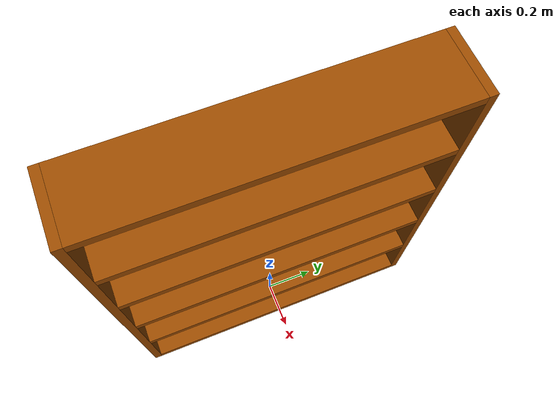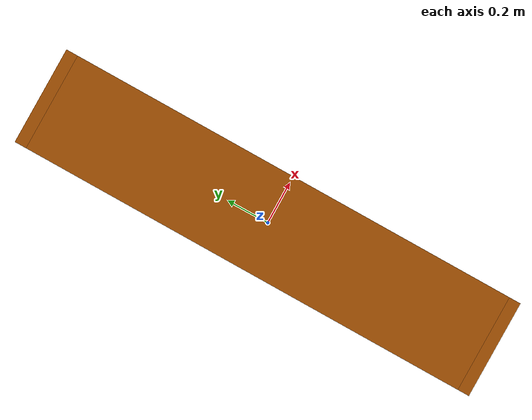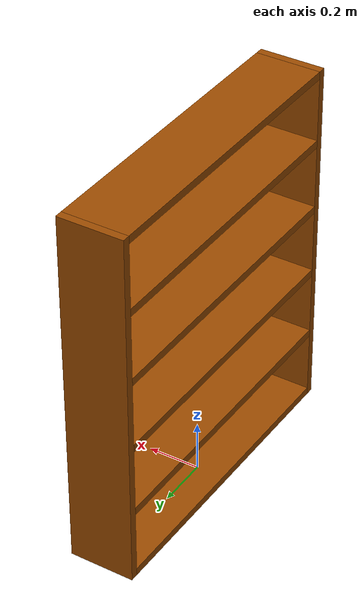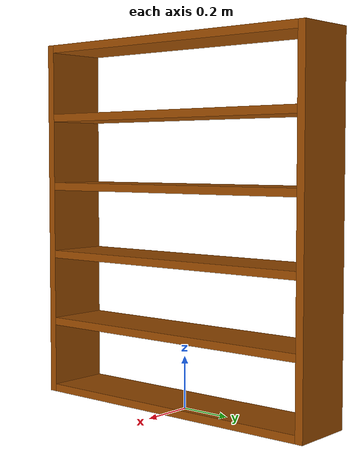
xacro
<?xml version="1.0"?>
<robot xmlns:xacro="http://www.ros.org/wiki/xacro" name="container_no_lid">
    <xacro:include filename="$(cwd)/common.xacro"/>
    <xacro:property name="total_width" value="1.2"/>
    <xacro:property name="total_height" value="1.4"/>
    <xacro:property name="total_depth" value="0.25"/>
    <xacro:property name="wall_thickness" value="0.03"/>
    <xacro:property name="num_boards" value="6"/>

    <link name="base_link">
        <inertial>
            <origin rpy="0 0 0" xyz="0 0 0"/>
            <mass value="0.0"/>
            <inertia ixx="1" ixy="0" ixz="0" iyy="1" iyz="0" izz="1"/>
        </inertial>
    </link>

    <xacro:plane prefix="left_wall" width="${total_depth}" depth="${total_height}" thickness="${wall_thickness}" color="light_brown"/>
    <joint name="left_wall_joint" type="fixed">
        <origin xyz="0 ${-total_width/2} ${total_height/2}" rpy="${pi/2} 0 0"/>
        <parent link="base_link"/>
        <child link="left_wall_plane"/>
    </joint>

    <xacro:plane prefix="right_wall" width="${total_depth}" depth="${total_height}" thickness="${wall_thickness}" color="light_brown"/>
    <joint name="right_wall_joint" type="fixed">
        <origin xyz="0 ${total_width/2} ${total_height/2}" rpy="${pi/2} 0 0"/>
        <parent link="base_link"/>
        <child link="right_wall_plane"/>
    </joint>

    <xacro:macro name="board" params="index">
        <xacro:plane prefix="board${index}" width="${total_depth}" depth="${total_width-wall_thickness}" thickness="${wall_thickness}" color="light_brown"/>
        <xacro:property name="board_dist" value="${(total_height-wall_thickness)/(num_boards-1)}"/>
        <joint name="board${index}_joint" type="fixed">
            <origin xyz="0 0 ${index * board_dist + wall_thickness/2}" rpy="0 0 0"/>
            <parent link="base_link"/>
            <child link="board${index}_plane"/>
        </joint>
    </xacro:macro>
    <xacro:board index="0"/>
    <xacro:board index="1"/>
    <xacro:board index="2"/>
    <xacro:board index="3"/>
    <xacro:board index="4"/>
    <xacro:board index="5"/>

</robot>

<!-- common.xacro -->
<robot xmlns:xacro="http://www.ros.org/wiki/xacro" name="container_common">

<material name="white">
  <color rgba="1 1 1 1"/>
</material>
<material name="dark_brown">
  <color rgba="0.4 0.2 0.0 1"/>
</material>
<material name="light_brown">
  <color rgba="0.6 0.29 0.0 1"/>
</material>
<material name="silver">
  <color rgba="0.87 0.87 0.87 0.8"/>
</material>

<xacro:macro name="ori_geo" params="width depth height">
  <origin rpy="0 0 0" xyz="0 0 0"/>
  <geometry>
    <box size="${width} ${depth} ${height}"/>
  </geometry>
</xacro:macro>

<xacro:macro name="plane" params="prefix width depth thickness color">
  <link name="${prefix}_plane">
    <contact>
      <lateral_friction value="1.0"/>
    </contact>
    <inertial>
      <origin rpy="0 0 0" xyz="0 0 0"/>
       <mass value="0.2"/>
       <inertia ixx="1" ixy="0" ixz="0" iyy="1" iyz="0" izz="1"/>
    </inertial>
    <visual>
      <xacro:ori_geo width="${width}" depth="${depth}" height="${thickness}"/>
      <material name="${color}"/>
    </visual>
    <collision>
      <xacro:ori_geo width="${width}" depth="${depth}" height="${thickness}"/>
    </collision>
  </link>
</xacro:macro>

<xacro:macro name="corpus" params="prefix width depth height wall_thickness color">
  <xacro:plane prefix="${prefix}_bottom" width="${width}" depth="${depth}" thickness="${wall_thickness}" color="${color}"/>

  <xacro:plane prefix="${prefix}_back" width="${width}" depth="${height}" thickness="${wall_thickness}" color="${color}"/>
  <joint name="${prefix}_back_joint" type="fixed">
    <origin xyz="0 ${depth/2-wall_thickness/2} ${height/2-wall_thickness/2}" rpy="${pi/2} 0 0"/>
    <parent link="${prefix}_bottom_plane"/>
    <child link="${prefix}_back_plane"/>
  </joint>

  <xacro:plane prefix="${prefix}_left" width="${depth-2*wall_thickness}" depth="${height}" thickness="${wall_thickness}" color="${color}"/>
  <joint name="${prefix}_left_joint" type="fixed">
    <origin xyz="-${width/2-wall_thickness/2} 0 ${height/2-wall_thickness/2}" rpy="${pi/2} 0 ${pi/2}"/>
    <parent link="${prefix}_bottom_plane"/>
    <child link="${prefix}_left_plane"/>
  </joint>

  <xacro:plane prefix="${prefix}_right" width="${depth-2*wall_thickness}" depth="${height}" thickness="${wall_thickness}" color="${color}"/>
  <joint name="${prefix}_right_joint" type="fixed">
    <origin xyz="${width/2-wall_thickness/2} 0 ${height/2-wall_thickness/2}" rpy="${pi/2} 0 ${pi/2}"/>
    <parent link="${prefix}_bottom_plane"/>
    <child link="${prefix}_right_plane"/>
  </joint>

  <xacro:plane prefix="${prefix}_front" width="${width}" depth="${height}" thickness="${wall_thickness}" color="${color}"/>
  <joint name="${prefix}_front_joint" type="fixed">
    <origin xyz="0 -${depth/2-wall_thickness/2} ${height/2-wall_thickness/2}" rpy="${pi/2} 0 0"/>
    <parent link="${prefix}_bottom_plane"/>
    <child link="${prefix}_front_plane"/>
  </joint>
</xacro:macro>

<xacro:macro name="handle" params="length">
<link name="handle">
  <inertial>
    <origin rpy="0 0 0" xyz="0 0 0"/>
    <mass value="0.2"/>
    <inertia ixx="1" ixy="0" ixz="0" iyy="1" iyz="0" izz="1"/>
  </inertial>
  <collision>
    <origin rpy="0 0 0" xyz="0 0 0"/>
    <geometry>
      <cylinder radius="0.01" length="${length}"/>
    </geometry>
  </collision>
  <visual>
    <origin rpy="0 0 0" xyz="0 0 0"/>
    <geometry>
      <cylinder radius="0.01" length="${length}"/>
    </geometry>
    <material name="silver"/>
  </visual>
</link>
</xacro:macro>

</robot>
